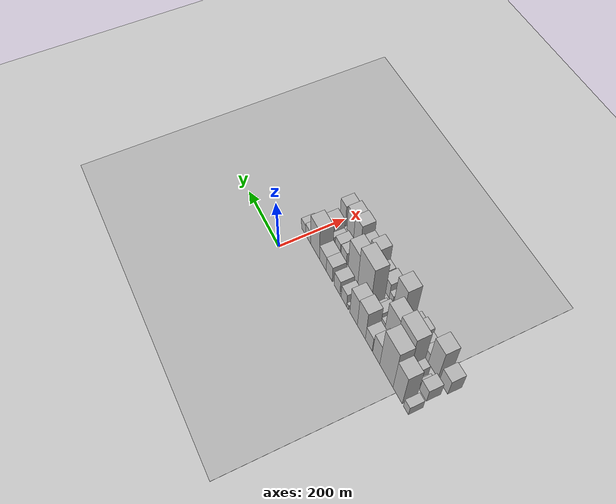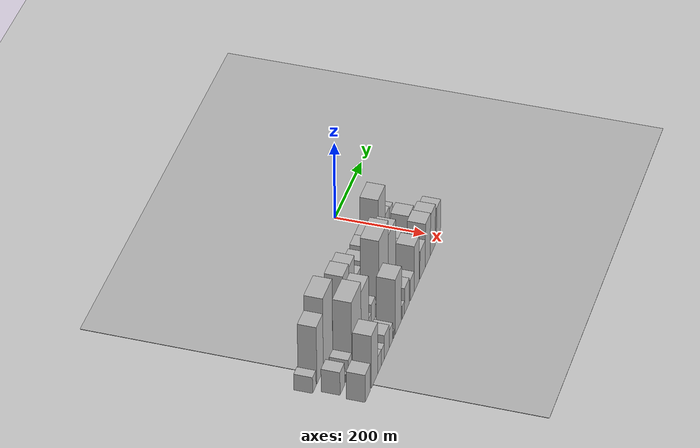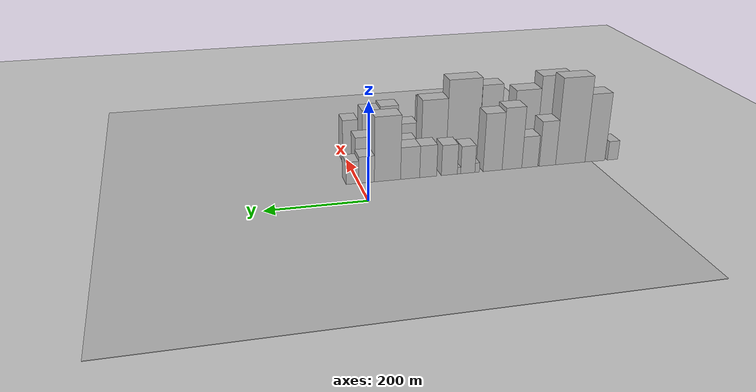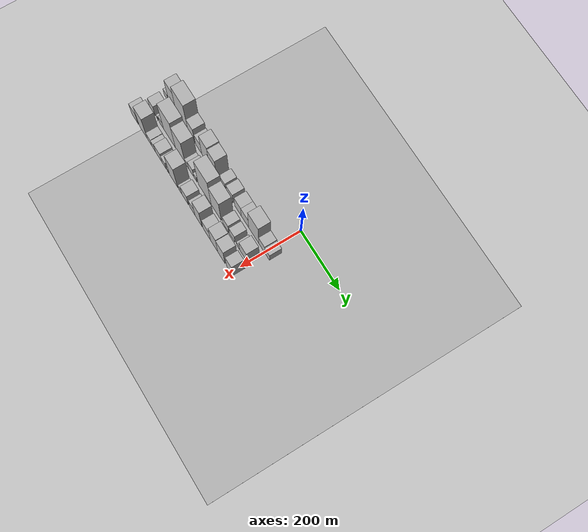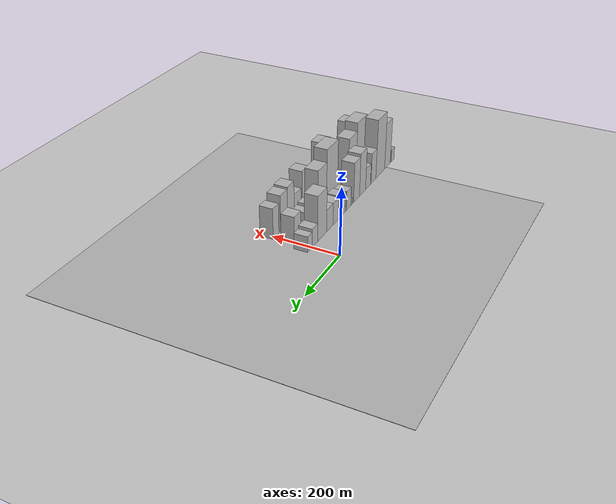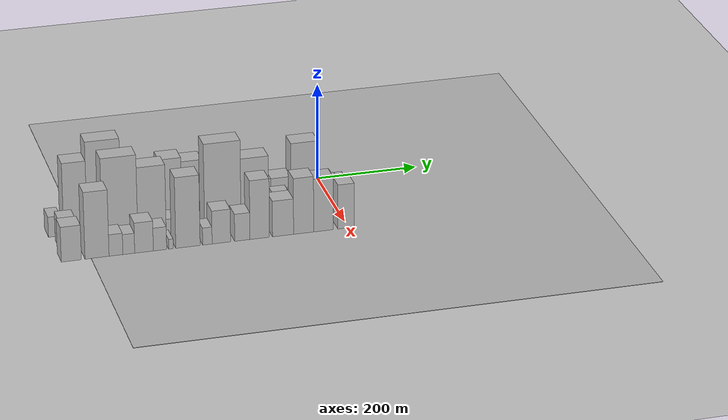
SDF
<sdf version="1.6">
 <world name="default">
  <include><name>ground_plane_1</name><uri>model://HANNAS_ground_plane</uri></include>
  <include>
   <name>ground_plane_2</name>
   <uri>model://HANNAS_ground_plane</uri>
   <pose>100 0 0  0 0 0</pose>
  </include>
  <model name="building_1">
   <static>1</static>
   <pose>100.0000 -548.1899 0 0.000000 0.000000 0.000000</pose>
   <link name="link">
    <pose>0 0 21.00 0 0 0</pose>
    <collision name="collision"><geometry><box><size>40.0000 23.6201 42.0000</size></box></geometry></collision>
    <visual name="visual">
     <cast_shadows>0</cast_shadows>
     <geometry><box><size>40.0000 23.6201 42.0000</size></box></geometry>
     <material>
      <script>
       <uri>model://HANNAS_wall/materials/scripts</uri>
       <uri>model://HANNAS_wall/materials/textures</uri>
       <name>vrc/HANNAS_wall</name>
      </script>
     </material>
    </visual>
   </link>
  </model>
  <model name="building_2">
   <static>1</static>
   <pose>100.0000 -507.7143 0 0.000000 0.000000 0.000000</pose>
   <link name="link">
    <pose>0 0 75.00 0 0 0</pose>
    <collision name="collision"><geometry><box><size>40.0000 45.3312 150.0000</size></box></geometry></collision>
    <visual name="visual">
     <cast_shadows>0</cast_shadows>
     <geometry><box><size>40.0000 45.3312 150.0000</size></box></geometry>
     <material>
      <script>
       <uri>model://HANNAS_wall/materials/scripts</uri>
       <uri>model://HANNAS_wall/materials/textures</uri>
       <name>vrc/HANNAS_wall</name>
      </script>
     </material>
    </visual>
   </link>
  </model>
  <model name="building_3">
   <static>1</static>
   <pose>100.0000 -451.9256 0 0.000000 0.000000 0.000000</pose>
   <link name="link">
    <pose>0 0 94.50 0 0 0</pose>
    <collision name="collision"><geometry><box><size>40.0000 66.2461 189.0000</size></box></geometry></collision>
    <visual name="visual">
     <cast_shadows>0</cast_shadows>
     <geometry><box><size>40.0000 66.2461 189.0000</size></box></geometry>
     <material>
      <script>
       <uri>model://HANNAS_wall/materials/scripts</uri>
       <uri>model://HANNAS_wall/materials/textures</uri>
       <name>vrc/HANNAS_wall</name>
      </script>
     </material>
    </visual>
   </link>
  </model>
  <model name="building_4">
   <static>1</static>
   <pose>100.0000 -400.5581 0 0.000000 0.000000 0.000000</pose>
   <link name="link">
    <pose>0 0 49.50 0 0 0</pose>
    <collision name="collision"><geometry><box><size>40.0000 36.4890 99.0000</size></box></geometry></collision>
    <visual name="visual">
     <cast_shadows>0</cast_shadows>
     <geometry><box><size>40.0000 36.4890 99.0000</size></box></geometry>
     <material>
      <script>
       <uri>model://HANNAS_wall/materials/scripts</uri>
       <uri>model://HANNAS_wall/materials/textures</uri>
       <name>vrc/HANNAS_wall</name>
      </script>
     </material>
    </visual>
   </link>
  </model>
  <model name="building_5">
   <static>1</static>
   <pose>100.0000 -361.6090 0 0.000000 0.000000 0.000000</pose>
   <link name="link">
    <pose>0 0 34.50 0 0 0</pose>
    <collision name="collision"><geometry><box><size>40.0000 35.4092 69.0000</size></box></geometry></collision>
    <visual name="visual">
     <cast_shadows>0</cast_shadows>
     <geometry><box><size>40.0000 35.4092 69.0000</size></box></geometry>
     <material>
      <script>
       <uri>model://HANNAS_wall/materials/scripts</uri>
       <uri>model://HANNAS_wall/materials/textures</uri>
       <name>vrc/HANNAS_wall</name>
      </script>
     </material>
    </visual>
   </link>
  </model>
  <model name="building_6">
   <static>1</static>
   <pose>100.0000 -322.3359 0 0.000000 0.000000 0.000000</pose>
   <link name="link">
    <pose>0 0 67.50 0 0 0</pose>
    <collision name="collision"><geometry><box><size>40.0000 43.1370 135.0000</size></box></geometry></collision>
    <visual name="visual">
     <cast_shadows>0</cast_shadows>
     <geometry><box><size>40.0000 43.1370 135.0000</size></box></geometry>
     <material>
      <script>
       <uri>model://HANNAS_wall/materials/scripts</uri>
       <uri>model://HANNAS_wall/materials/textures</uri>
       <name>vrc/HANNAS_wall</name>
      </script>
     </material>
    </visual>
   </link>
  </model>
  <model name="building_7">
   <static>1</static>
   <pose>100.0000 -280.2449 0 0.000000 0.000000 0.000000</pose>
   <link name="link">
    <pose>0 0 63.00 0 0 0</pose>
    <collision name="collision"><geometry><box><size>40.0000 41.0449 126.0000</size></box></geometry></collision>
    <visual name="visual">
     <cast_shadows>0</cast_shadows>
     <geometry><box><size>40.0000 41.0449 126.0000</size></box></geometry>
     <material>
      <script>
       <uri>model://HANNAS_wall/materials/scripts</uri>
       <uri>model://HANNAS_wall/materials/textures</uri>
       <name>vrc/HANNAS_wall</name>
      </script>
     </material>
    </visual>
   </link>
  </model>
  <model name="building_8">
   <static>1</static>
   <pose>100.0000 -246.9305 0 0.000000 0.000000 0.000000</pose>
   <link name="link">
    <pose>0 0 10.50 0 0 0</pose>
    <collision name="collision"><geometry><box><size>40.0000 9.5841 21.0000</size></box></geometry></collision>
    <visual name="visual">
     <cast_shadows>0</cast_shadows>
     <geometry><box><size>40.0000 9.5841 21.0000</size></box></geometry>
     <material>
      <script>
       <uri>model://HANNAS_wall/materials/scripts</uri>
       <uri>model://HANNAS_wall/materials/textures</uri>
       <name>vrc/HANNAS_wall</name>
      </script>
     </material>
    </visual>
   </link>
  </model>
  <model name="building_9">
   <static>1</static>
   <pose>100.0000 -226.8471 0 0.000000 0.000000 0.000000</pose>
   <link name="link">
    <pose>0 0 30.00 0 0 0</pose>
    <collision name="collision"><geometry><box><size>40.0000 30.5827 60.0000</size></box></geometry></collision>
    <visual name="visual">
     <cast_shadows>0</cast_shadows>
     <geometry><box><size>40.0000 30.5827 60.0000</size></box></geometry>
     <material>
      <script>
       <uri>model://HANNAS_wall/materials/scripts</uri>
       <uri>model://HANNAS_wall/materials/textures</uri>
       <name>vrc/HANNAS_wall</name>
      </script>
     </material>
    </visual>
   </link>
  </model>
  <model name="building_10">
   <static>1</static>
   <pose>100.0000 -207.9256 0 0.000000 0.000000 0.000000</pose>
   <link name="link">
    <pose>0 0 7.50 0 0 0</pose>
    <collision name="collision"><geometry><box><size>40.0000 7.2604 15.0000</size></box></geometry></collision>
    <visual name="visual">
     <cast_shadows>0</cast_shadows>
     <geometry><box><size>40.0000 7.2604 15.0000</size></box></geometry>
     <material>
      <script>
       <uri>model://HANNAS_wall/materials/scripts</uri>
       <uri>model://HANNAS_wall/materials/textures</uri>
       <name>vrc/HANNAS_wall</name>
      </script>
     </material>
    </visual>
   </link>
  </model>
  <model name="building_11">
   <static>1</static>
   <pose>100.0000 -187.4058 0 0.000000 0.000000 0.000000</pose>
   <link name="link">
    <pose>0 0 33.00 0 0 0</pose>
    <collision name="collision"><geometry><box><size>40.0000 33.7791 66.0000</size></box></geometry></collision>
    <visual name="visual">
     <cast_shadows>0</cast_shadows>
     <geometry><box><size>40.0000 33.7791 66.0000</size></box></geometry>
     <material>
      <script>
       <uri>model://HANNAS_wall/materials/scripts</uri>
       <uri>model://HANNAS_wall/materials/textures</uri>
       <name>vrc/HANNAS_wall</name>
      </script>
     </material>
    </visual>
   </link>
  </model>
  <model name="building_12">
   <static>1</static>
   <pose>100.0000 -142.6966 0 0.000000 0.000000 0.000000</pose>
   <link name="link">
    <pose>0 0 34.50 0 0 0</pose>
    <collision name="collision"><geometry><box><size>40.0000 35.6393 69.0000</size></box></geometry></collision>
    <visual name="visual">
     <cast_shadows>0</cast_shadows>
     <geometry><box><size>40.0000 35.6393 69.0000</size></box></geometry>
     <material>
      <script>
       <uri>model://HANNAS_wall/materials/scripts</uri>
       <uri>model://HANNAS_wall/materials/textures</uri>
       <name>vrc/HANNAS_wall</name>
      </script>
     </material>
    </visual>
   </link>
  </model>
  <model name="building_13">
   <static>1</static>
   <pose>100.0000 -105.0004 0 0.000000 0.000000 0.000000</pose>
   <link name="link">
    <pose>0 0 34.50 0 0 0</pose>
    <collision name="collision"><geometry><box><size>40.0000 39.7530 69.0000</size></box></geometry></collision>
    <visual name="visual">
     <cast_shadows>0</cast_shadows>
     <geometry><box><size>40.0000 39.7530 69.0000</size></box></geometry>
     <material>
      <script>
       <uri>model://HANNAS_wall/materials/scripts</uri>
       <uri>model://HANNAS_wall/materials/textures</uri>
       <name>vrc/HANNAS_wall</name>
      </script>
     </material>
    </visual>
   </link>
  </model>
  <model name="building_14">
   <static>1</static>
   <pose>100.0000 -58.0740 0 0.000000 0.000000 0.000000</pose>
   <link name="link">
    <pose>0 0 69.00 0 0 0</pose>
    <collision name="collision"><geometry><box><size>40.0000 54.0998 138.0000</size></box></geometry></collision>
    <visual name="visual">
     <cast_shadows>0</cast_shadows>
     <geometry><box><size>40.0000 54.0998 138.0000</size></box></geometry>
     <material>
      <script>
       <uri>model://HANNAS_wall/materials/scripts</uri>
       <uri>model://HANNAS_wall/materials/textures</uri>
       <name>vrc/HANNAS_wall</name>
      </script>
     </material>
    </visual>
   </link>
  </model>
  <model name="building_15">
   <static>1</static>
   <pose>100.0000 -15.1862 0 0.000000 0.000000 0.000000</pose>
   <link name="link">
    <pose>0 0 28.50 0 0 0</pose>
    <collision name="collision"><geometry><box><size>40.0000 31.6759 57.0000</size></box></geometry></collision>
    <visual name="visual">
     <cast_shadows>0</cast_shadows>
     <geometry><box><size>40.0000 31.6759 57.0000</size></box></geometry>
     <material>
      <script>
       <uri>model://HANNAS_wall/materials/scripts</uri>
       <uri>model://HANNAS_wall/materials/textures</uri>
       <name>vrc/HANNAS_wall</name>
      </script>
     </material>
    </visual>
   </link>
  </model>
  <model name="building_16">
   <static>1</static>
   <pose>100.0000 13.5166 0 0.000000 0.000000 0.000000</pose>
   <link name="link">
    <pose>0 0 24.00 0 0 0</pose>
    <collision name="collision"><geometry><box><size>40.0000 25.7296 48.0000</size></box></geometry></collision>
    <visual name="visual">
     <cast_shadows>0</cast_shadows>
     <geometry><box><size>40.0000 25.7296 48.0000</size></box></geometry>
     <material>
      <script>
       <uri>model://HANNAS_wall/materials/scripts</uri>
       <uri>model://HANNAS_wall/materials/textures</uri>
       <name>vrc/HANNAS_wall</name>
      </script>
     </material>
    </visual>
   </link>
  </model>
  <model name="building_34">
   <static>1</static>
   <pose>155.0000 -533.9332 0 0.000000 0.000000 0.000000</pose>
   <link name="link">
    <pose>0 0 30.00 0 0 0</pose>
    <collision name="collision"><geometry><box><size>40.0000 32.1335 60.0000</size></box></geometry></collision>
    <visual name="visual">
     <cast_shadows>0</cast_shadows>
     <geometry><box><size>40.0000 32.1335 60.0000</size></box></geometry>
     <material>
      <script>
       <uri>model://HANNAS_wall/materials/scripts</uri>
       <uri>model://HANNAS_wall/materials/textures</uri>
       <name>vrc/HANNAS_wall</name>
      </script>
     </material>
    </visual>
   </link>
  </model>
  <model name="building_35">
   <static>1</static>
   <pose>155.0000 -505.0855 0 0.000000 0.000000 0.000000</pose>
   <link name="link">
    <pose>0 0 10.50 0 0 0</pose>
    <collision name="collision"><geometry><box><size>40.0000 9.5620 21.0000</size></box></geometry></collision>
    <visual name="visual">
     <cast_shadows>0</cast_shadows>
     <geometry><box><size>40.0000 9.5620 21.0000</size></box></geometry>
     <material>
      <script>
       <uri>model://HANNAS_wall/materials/scripts</uri>
       <uri>model://HANNAS_wall/materials/textures</uri>
       <name>vrc/HANNAS_wall</name>
      </script>
     </material>
    </visual>
   </link>
  </model>
  <model name="building_36">
   <static>1</static>
   <pose>155.0000 -479.7461 0 0.000000 0.000000 0.000000</pose>
   <link name="link">
    <pose>0 0 22.50 0 0 0</pose>
    <collision name="collision"><geometry><box><size>40.0000 25.1167 45.0000</size></box></geometry></collision>
    <visual name="visual">
     <cast_shadows>0</cast_shadows>
     <geometry><box><size>40.0000 25.1167 45.0000</size></box></geometry>
     <material>
      <script>
       <uri>model://HANNAS_wall/materials/scripts</uri>
       <uri>model://HANNAS_wall/materials/textures</uri>
       <name>vrc/HANNAS_wall</name>
      </script>
     </material>
    </visual>
   </link>
  </model>
  <model name="building_37">
   <static>1</static>
   <pose>155.0000 -433.0022 0 0.000000 0.000000 0.000000</pose>
   <link name="link">
    <pose>0 0 88.50 0 0 0</pose>
    <collision name="collision"><geometry><box><size>40.0000 68.3711 177.0000</size></box></geometry></collision>
    <visual name="visual">
     <cast_shadows>0</cast_shadows>
     <geometry><box><size>40.0000 68.3711 177.0000</size></box></geometry>
     <material>
      <script>
       <uri>model://HANNAS_wall/materials/scripts</uri>
       <uri>model://HANNAS_wall/materials/textures</uri>
       <name>vrc/HANNAS_wall</name>
      </script>
     </material>
    </visual>
   </link>
  </model>
  <model name="building_38">
   <static>1</static>
   <pose>155.0000 -371.3407 0 0.000000 0.000000 0.000000</pose>
   <link name="link">
    <pose>0 0 75.00 0 0 0</pose>
    <collision name="collision"><geometry><box><size>40.0000 54.9519 150.0000</size></box></geometry></collision>
    <visual name="visual">
     <cast_shadows>0</cast_shadows>
     <geometry><box><size>40.0000 54.9519 150.0000</size></box></geometry>
     <material>
      <script>
       <uri>model://HANNAS_wall/materials/scripts</uri>
       <uri>model://HANNAS_wall/materials/textures</uri>
       <name>vrc/HANNAS_wall</name>
      </script>
     </material>
    </visual>
   </link>
  </model>
  <model name="building_39">
   <static>1</static>
   <pose>155.0000 -333.9074 0 0.000000 0.000000 0.000000</pose>
   <link name="link">
    <pose>0 0 18.00 0 0 0</pose>
    <collision name="collision"><geometry><box><size>40.0000 19.9147 36.0000</size></box></geometry></collision>
    <visual name="visual">
     <cast_shadows>0</cast_shadows>
     <geometry><box><size>40.0000 19.9147 36.0000</size></box></geometry>
     <material>
      <script>
       <uri>model://HANNAS_wall/materials/scripts</uri>
       <uri>model://HANNAS_wall/materials/textures</uri>
       <name>vrc/HANNAS_wall</name>
      </script>
     </material>
    </visual>
   </link>
  </model>
  <model name="building_40">
   <static>1</static>
   <pose>155.0000 -309.5856 0 0.000000 0.000000 0.000000</pose>
   <link name="link">
    <pose>0 0 28.50 0 0 0</pose>
    <collision name="collision"><geometry><box><size>40.0000 28.7289 57.0000</size></box></geometry></collision>
    <visual name="visual">
     <cast_shadows>0</cast_shadows>
     <geometry><box><size>40.0000 28.7289 57.0000</size></box></geometry>
     <material>
      <script>
       <uri>model://HANNAS_wall/materials/scripts</uri>
       <uri>model://HANNAS_wall/materials/textures</uri>
       <name>vrc/HANNAS_wall</name>
      </script>
     </material>
    </visual>
   </link>
  </model>
  <model name="building_41">
   <static>1</static>
   <pose>155.0000 -286.6634 0 0.000000 0.000000 0.000000</pose>
   <link name="link">
    <pose>0 0 16.50 0 0 0</pose>
    <collision name="collision"><geometry><box><size>40.0000 17.1156 33.0000</size></box></geometry></collision>
    <visual name="visual">
     <cast_shadows>0</cast_shadows>
     <geometry><box><size>40.0000 17.1156 33.0000</size></box></geometry>
     <material>
      <script>
       <uri>model://HANNAS_wall/materials/scripts</uri>
       <uri>model://HANNAS_wall/materials/textures</uri>
       <name>vrc/HANNAS_wall</name>
      </script>
     </material>
    </visual>
   </link>
  </model>
  <model name="building_42">
   <static>1</static>
   <pose>155.0000 -233.5154 0 0.000000 0.000000 0.000000</pose>
   <link name="link">
    <pose>0 0 91.50 0 0 0</pose>
    <collision name="collision"><geometry><box><size>40.0000 71.1804 183.0000</size></box></geometry></collision>
    <visual name="visual">
     <cast_shadows>0</cast_shadows>
     <geometry><box><size>40.0000 71.1804 183.0000</size></box></geometry>
     <material>
      <script>
       <uri>model://HANNAS_wall/materials/scripts</uri>
       <uri>model://HANNAS_wall/materials/textures</uri>
       <name>vrc/HANNAS_wall</name>
      </script>
     </material>
    </visual>
   </link>
  </model>
  <model name="building_43">
   <static>1</static>
   <pose>155.0000 -170.5950 0 0.000000 0.000000 0.000000</pose>
   <link name="link">
    <pose>0 0 72.00 0 0 0</pose>
    <collision name="collision"><geometry><box><size>40.0000 54.6604 144.0000</size></box></geometry></collision>
    <visual name="visual">
     <cast_shadows>0</cast_shadows>
     <geometry><box><size>40.0000 54.6604 144.0000</size></box></geometry>
     <material>
      <script>
       <uri>model://HANNAS_wall/materials/scripts</uri>
       <uri>model://HANNAS_wall/materials/textures</uri>
       <name>vrc/HANNAS_wall</name>
      </script>
     </material>
    </visual>
   </link>
  </model>
  <model name="building_44">
   <static>1</static>
   <pose>155.0000 -117.5051 0 0.000000 0.000000 0.000000</pose>
   <link name="link">
    <pose>0 0 30.00 0 0 0</pose>
    <collision name="collision"><geometry><box><size>40.0000 31.5194 60.0000</size></box></geometry></collision>
    <visual name="visual">
     <cast_shadows>0</cast_shadows>
     <geometry><box><size>40.0000 31.5194 60.0000</size></box></geometry>
     <material>
      <script>
       <uri>model://HANNAS_wall/materials/scripts</uri>
       <uri>model://HANNAS_wall/materials/textures</uri>
       <name>vrc/HANNAS_wall</name>
      </script>
     </material>
    </visual>
   </link>
  </model>
  <model name="building_45">
   <static>1</static>
   <pose>155.0000 -82.9741 0 0.000000 0.000000 0.000000</pose>
   <link name="link">
    <pose>0 0 27.00 0 0 0</pose>
    <collision name="collision"><geometry><box><size>40.0000 29.5426 54.0000</size></box></geometry></collision>
    <visual name="visual">
     <cast_shadows>0</cast_shadows>
     <geometry><box><size>40.0000 29.5426 54.0000</size></box></geometry>
     <material>
      <script>
       <uri>model://HANNAS_wall/materials/scripts</uri>
       <uri>model://HANNAS_wall/materials/textures</uri>
       <name>vrc/HANNAS_wall</name>
      </script>
     </material>
    </visual>
   </link>
  </model>
  <model name="building_46">
   <static>1</static>
   <pose>155.0000 -50.9510 0 0.000000 0.000000 0.000000</pose>
   <link name="link">
    <pose>0 0 16.50 0 0 0</pose>
    <collision name="collision"><geometry><box><size>40.0000 16.5037 33.0000</size></box></geometry></collision>
    <visual name="visual">
     <cast_shadows>0</cast_shadows>
     <geometry><box><size>40.0000 16.5037 33.0000</size></box></geometry>
     <material>
      <script>
       <uri>model://HANNAS_wall/materials/scripts</uri>
       <uri>model://HANNAS_wall/materials/textures</uri>
       <name>vrc/HANNAS_wall</name>
      </script>
     </material>
    </visual>
   </link>
  </model>
  <model name="building_47">
   <static>1</static>
   <pose>155.0000 -23.3699 0 0.000000 0.000000 0.000000</pose>
   <link name="link">
    <pose>0 0 37.50 0 0 0</pose>
    <collision name="collision"><geometry><box><size>40.0000 38.6584 75.0000</size></box></geometry></collision>
    <visual name="visual">
     <cast_shadows>0</cast_shadows>
     <geometry><box><size>40.0000 38.6584 75.0000</size></box></geometry>
     <material>
      <script>
       <uri>model://HANNAS_wall/materials/scripts</uri>
       <uri>model://HANNAS_wall/materials/textures</uri>
       <name>vrc/HANNAS_wall</name>
      </script>
     </material>
    </visual>
   </link>
  </model>
  <model name="building_62">
   <static>1</static>
   <pose>210.0000 -537.9240 0 0.000000 0.000000 0.000000</pose>
   <link name="link">
    <pose>0 0 36.00 0 0 0</pose>
    <collision name="collision"><geometry><box><size>40.0000 38.1519 72.0000</size></box></geometry></collision>
    <visual name="visual">
     <cast_shadows>0</cast_shadows>
     <geometry><box><size>40.0000 38.1519 72.0000</size></box></geometry>
     <material>
      <script>
       <uri>model://HANNAS_wall/materials/scripts</uri>
       <uri>model://HANNAS_wall/materials/textures</uri>
       <name>vrc/HANNAS_wall</name>
      </script>
     </material>
    </visual>
   </link>
  </model>
  <model name="building_63">
   <static>1</static>
   <pose>210.0000 -488.9559 0 0.000000 0.000000 0.000000</pose>
   <link name="link">
    <pose>0 0 69.00 0 0 0</pose>
    <collision name="collision"><geometry><box><size>40.0000 45.7842 138.0000</size></box></geometry></collision>
    <visual name="visual">
     <cast_shadows>0</cast_shadows>
     <geometry><box><size>40.0000 45.7842 138.0000</size></box></geometry>
     <material>
      <script>
       <uri>model://HANNAS_wall/materials/scripts</uri>
       <uri>model://HANNAS_wall/materials/textures</uri>
       <name>vrc/HANNAS_wall</name>
      </script>
     </material>
    </visual>
   </link>
  </model>
  <model name="building_64">
   <static>1</static>
   <pose>210.0000 -452.8331 0 0.000000 0.000000 0.000000</pose>
   <link name="link">
    <pose>0 0 22.50 0 0 0</pose>
    <collision name="collision"><geometry><box><size>40.0000 26.4615 45.0000</size></box></geometry></collision>
    <visual name="visual">
     <cast_shadows>0</cast_shadows>
     <geometry><box><size>40.0000 26.4615 45.0000</size></box></geometry>
     <material>
      <script>
       <uri>model://HANNAS_wall/materials/scripts</uri>
       <uri>model://HANNAS_wall/materials/textures</uri>
       <name>vrc/HANNAS_wall</name>
      </script>
     </material>
    </visual>
   </link>
  </model>
  <model name="building_65">
   <static>1</static>
   <pose>210.0000 -428.2749 0 0.000000 0.000000 0.000000</pose>
   <link name="link">
    <pose>0 0 21.00 0 0 0</pose>
    <collision name="collision"><geometry><box><size>40.0000 22.6547 42.0000</size></box></geometry></collision>
    <visual name="visual">
     <cast_shadows>0</cast_shadows>
     <geometry><box><size>40.0000 22.6547 42.0000</size></box></geometry>
     <material>
      <script>
       <uri>model://HANNAS_wall/materials/scripts</uri>
       <uri>model://HANNAS_wall/materials/textures</uri>
       <name>vrc/HANNAS_wall</name>
      </script>
     </material>
    </visual>
   </link>
  </model>
  <model name="building_66">
   <static>1</static>
   <pose>210.0000 -399.0613 0 0.000000 0.000000 0.000000</pose>
   <link name="link">
    <pose>0 0 31.50 0 0 0</pose>
    <collision name="collision"><geometry><box><size>40.0000 35.7724 63.0000</size></box></geometry></collision>
    <visual name="visual">
     <cast_shadows>0</cast_shadows>
     <geometry><box><size>40.0000 35.7724 63.0000</size></box></geometry>
     <material>
      <script>
       <uri>model://HANNAS_wall/materials/scripts</uri>
       <uri>model://HANNAS_wall/materials/textures</uri>
       <name>vrc/HANNAS_wall</name>
      </script>
     </material>
    </visual>
   </link>
  </model>
  <model name="building_67">
   <static>1</static>
   <pose>210.0000 -368.3655 0 0.000000 0.000000 0.000000</pose>
   <link name="link">
    <pose>0 0 24.00 0 0 0</pose>
    <collision name="collision"><geometry><box><size>40.0000 25.6192 48.0000</size></box></geometry></collision>
    <visual name="visual">
     <cast_shadows>0</cast_shadows>
     <geometry><box><size>40.0000 25.6192 48.0000</size></box></geometry>
     <material>
      <script>
       <uri>model://HANNAS_wall/materials/scripts</uri>
       <uri>model://HANNAS_wall/materials/textures</uri>
       <name>vrc/HANNAS_wall</name>
      </script>
     </material>
    </visual>
   </link>
  </model>
  <model name="building_68">
   <static>1</static>
   <pose>210.0000 -347.2727 0 0.000000 0.000000 0.000000</pose>
   <link name="link">
    <pose>0 0 10.50 0 0 0</pose>
    <collision name="collision"><geometry><box><size>40.0000 8.5665 21.0000</size></box></geometry></collision>
    <visual name="visual">
     <cast_shadows>0</cast_shadows>
     <geometry><box><size>40.0000 8.5665 21.0000</size></box></geometry>
     <material>
      <script>
       <uri>model://HANNAS_wall/materials/scripts</uri>
       <uri>model://HANNAS_wall/materials/textures</uri>
       <name>vrc/HANNAS_wall</name>
      </script>
     </material>
    </visual>
   </link>
  </model>
  <model name="building_69">
   <static>1</static>
   <pose>210.0000 -314.4757 0 0.000000 0.000000 0.000000</pose>
   <link name="link">
    <pose>0 0 73.50 0 0 0</pose>
    <collision name="collision"><geometry><box><size>40.0000 47.0275 147.0000</size></box></geometry></collision>
    <visual name="visual">
     <cast_shadows>0</cast_shadows>
     <geometry><box><size>40.0000 47.0275 147.0000</size></box></geometry>
     <material>
      <script>
       <uri>model://HANNAS_wall/materials/scripts</uri>
       <uri>model://HANNAS_wall/materials/textures</uri>
       <name>vrc/HANNAS_wall</name>
      </script>
     </material>
    </visual>
   </link>
  </model>
  <model name="building_70">
   <static>1</static>
   <pose>210.0000 -276.8095 0 0.000000 0.000000 0.000000</pose>
   <link name="link">
    <pose>0 0 18.00 0 0 0</pose>
    <collision name="collision"><geometry><box><size>40.0000 18.3050 36.0000</size></box></geometry></collision>
    <visual name="visual">
     <cast_shadows>0</cast_shadows>
     <geometry><box><size>40.0000 18.3050 36.0000</size></box></geometry>
     <material>
      <script>
       <uri>model://HANNAS_wall/materials/scripts</uri>
       <uri>model://HANNAS_wall/materials/textures</uri>
       <name>vrc/HANNAS_wall</name>
      </script>
     </material>
    </visual>
   </link>
  </model>
  <model name="building_71">
   <static>1</static>
   <pose>210.0000 -249.7302 0 0.000000 0.000000 0.000000</pose>
   <link name="link">
    <pose>0 0 34.50 0 0 0</pose>
    <collision name="collision"><geometry><box><size>40.0000 35.8534 69.0000</size></box></geometry></collision>
    <visual name="visual">
     <cast_shadows>0</cast_shadows>
     <geometry><box><size>40.0000 35.8534 69.0000</size></box></geometry>
     <material>
      <script>
       <uri>model://HANNAS_wall/materials/scripts</uri>
       <uri>model://HANNAS_wall/materials/textures</uri>
       <name>vrc/HANNAS_wall</name>
      </script>
     </material>
    </visual>
   </link>
  </model>
  <model name="building_72">
   <static>1</static>
   <pose>210.0000 -208.9678 0 0.000000 0.000000 0.000000</pose>
   <link name="link">
    <pose>0 0 28.50 0 0 0</pose>
    <collision name="collision"><geometry><box><size>40.0000 29.6713 57.0000</size></box></geometry></collision>
    <visual name="visual">
     <cast_shadows>0</cast_shadows>
     <geometry><box><size>40.0000 29.6713 57.0000</size></box></geometry>
     <material>
      <script>
       <uri>model://HANNAS_wall/materials/scripts</uri>
       <uri>model://HANNAS_wall/materials/textures</uri>
       <name>vrc/HANNAS_wall</name>
      </script>
     </material>
    </visual>
   </link>
  </model>
  <model name="building_73">
   <static>1</static>
   <pose>210.0000 -175.1057 0 0.000000 0.000000 0.000000</pose>
   <link name="link">
    <pose>0 0 61.50 0 0 0</pose>
    <collision name="collision"><geometry><box><size>40.0000 38.0530 123.0000</size></box></geometry></collision>
    <visual name="visual">
     <cast_shadows>0</cast_shadows>
     <geometry><box><size>40.0000 38.0530 123.0000</size></box></geometry>
     <material>
      <script>
       <uri>model://HANNAS_wall/materials/scripts</uri>
       <uri>model://HANNAS_wall/materials/textures</uri>
       <name>vrc/HANNAS_wall</name>
      </script>
     </material>
    </visual>
   </link>
  </model>
  <model name="building_74">
   <static>1</static>
   <pose>210.0000 -129.4726 0 0.000000 0.000000 0.000000</pose>
   <link name="link">
    <pose>0 0 37.50 0 0 0</pose>
    <collision name="collision"><geometry><box><size>40.0000 41.2132 75.0000</size></box></geometry></collision>
    <visual name="visual">
     <cast_shadows>0</cast_shadows>
     <geometry><box><size>40.0000 41.2132 75.0000</size></box></geometry>
     <material>
      <script>
       <uri>model://HANNAS_wall/materials/scripts</uri>
       <uri>model://HANNAS_wall/materials/textures</uri>
       <name>vrc/HANNAS_wall</name>
      </script>
     </material>
    </visual>
   </link>
  </model>
  <model name="building_75">
   <static>1</static>
   <pose>210.0000 -89.2094 0 0.000000 0.000000 0.000000</pose>
   <link name="link">
    <pose>0 0 58.50 0 0 0</pose>
    <collision name="collision"><geometry><box><size>40.0000 39.3130 117.0000</size></box></geometry></collision>
    <visual name="visual">
     <cast_shadows>0</cast_shadows>
     <geometry><box><size>40.0000 39.3130 117.0000</size></box></geometry>
     <material>
      <script>
       <uri>model://HANNAS_wall/materials/scripts</uri>
       <uri>model://HANNAS_wall/materials/textures</uri>
       <name>vrc/HANNAS_wall</name>
      </script>
     </material>
    </visual>
   </link>
  </model>
  <model name="building_76">
   <static>1</static>
   <pose>210.0000 -50.0914 0 0.000000 0.000000 0.000000</pose>
   <link name="link">
    <pose>0 0 55.50 0 0 0</pose>
    <collision name="collision"><geometry><box><size>40.0000 38.9231 111.0000</size></box></geometry></collision>
    <visual name="visual">
     <cast_shadows>0</cast_shadows>
     <geometry><box><size>40.0000 38.9231 111.0000</size></box></geometry>
     <material>
      <script>
       <uri>model://HANNAS_wall/materials/scripts</uri>
       <uri>model://HANNAS_wall/materials/textures</uri>
       <name>vrc/HANNAS_wall</name>
      </script>
     </material>
    </visual>
   </link>
  </model>
  <model name="building_77">
   <static>1</static>
   <pose>210.0000 -5.4737 0 0.000000 0.000000 0.000000</pose>
   <link name="link">
    <pose>0 0 46.50 0 0 0</pose>
    <collision name="collision"><geometry><box><size>40.0000 32.3122 93.0000</size></box></geometry></collision>
    <visual name="visual">
     <cast_shadows>0</cast_shadows>
     <geometry><box><size>40.0000 32.3122 93.0000</size></box></geometry>
     <material>
      <script>
       <uri>model://HANNAS_wall/materials/scripts</uri>
       <uri>model://HANNAS_wall/materials/textures</uri>
       <name>vrc/HANNAS_wall</name>
      </script>
     </material>
    </visual>
   </link>
  </model>
 </world>
</sdf>
